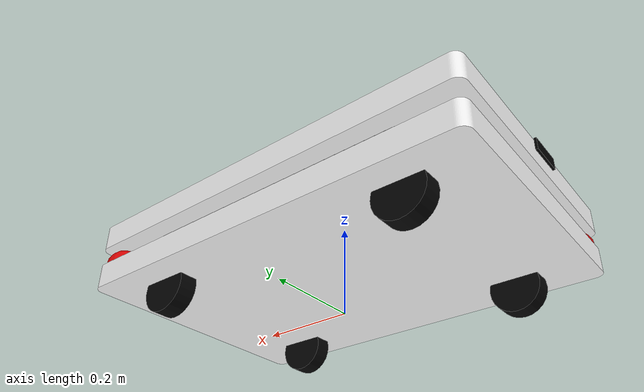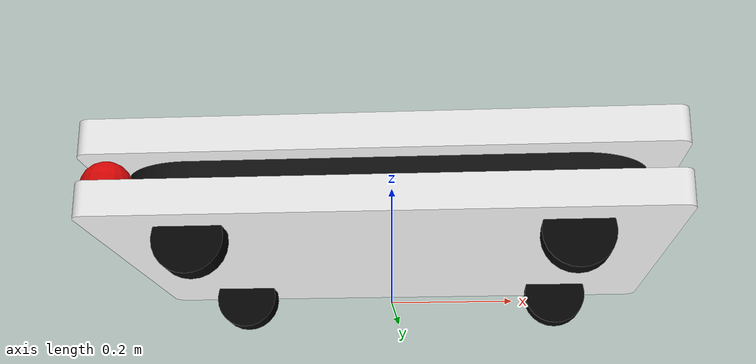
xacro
<?xml version="1.0"?>

<robot xmlns:xacro="http://www.ros.org/wiki/xacro"
       name="autonomous_tugger">

  <!-- VEHICLE PARAMETERS -->

  <xacro:property name="body_length" value="0.90"/>
  <xacro:property name="body_width" value="0.60"/>

  <xacro:property name="wheelbase" value="0.58"/>
  <xacro:property name="wheel_y" value="0.22"/>

  <xacro:property name="wheel_radius" value="0.055"/>
  <xacro:property name="wheel_width" value="0.040"/>
  <xacro:property name="wheel_mass" value="1.0"/>

  <xacro:property name="chassis_mass" value="45.0"/>

  <!-- MATERIALS -->

  <material name="body_white">
    <color rgba="0.95 0.95 0.95 1.0"/>
  </material>

  <material name="black">
    <color rgba="0.02 0.02 0.02 1.0"/>
  </material>

  <material name="gap_dark">
    <color rgba="0.06 0.06 0.06 1.0"/>
  </material>

  <material name="sensor_red">
    <color rgba="0.85 0.02 0.02 1.0"/>
  </material>

  <material name="camera_black">
    <color rgba="0.005 0.005 0.005 1.0"/>
  </material>

  <!-- BASE FOOTPRINT -->

  <link name="base_footprint"/>

  <joint name="base_footprint_joint"
         type="fixed">

    <parent link="base_footprint"/>
    <child link="base_link"/>

    <origin xyz="0 0 0.100"
            rpy="0 0 0"/>

  </joint>

  <!-- MAIN BODY -->

  <link name="base_link">

    <!-- LOWER WHITE FILLETED LAYER -->

    <visual name="bottom_layer">

      <origin xyz="0 0 0"
              rpy="0 0 0"/>

      <geometry>
        <mesh filename="package://tugger_description/meshes/filleted_body.stl"/>
      </geometry>

      <material name="body_white"/>

    </visual>

    <!-- SMALL RECESSED DARK GAP -->

    <visual name="middle_gap">

      <origin xyz="0 0 0.0475"
              rpy="0 0 0"/>

      <geometry>
        <mesh filename="package://tugger_description/meshes/filleted_middle.stl"/>
      </geometry>

      <material name="gap_dark"/>

    </visual>

    <!-- UPPER WHITE FILLETED LAYER -->

    <visual name="top_layer">

      <origin xyz="0 0 0.095"
              rpy="0 0 0"/>

      <geometry>
        <mesh filename="package://tugger_description/meshes/filleted_body.stl"/>
      </geometry>

      <material name="body_white"/>

    </visual>

    <!-- SIMPLE COLLISION -->

    <collision>

      <origin xyz="0 0 0.0475"
              rpy="0 0 0"/>

      <geometry>
        <box size="0.88 0.58 0.15"/>
      </geometry>

    </collision>

    <inertial>

      <origin xyz="0 0 0.0475"
              rpy="0 0 0"/>

      <mass value="${chassis_mass}"/>

      <inertia
        ixx="1.25"
        ixy="0"
        ixz="0"
        iyy="2.90"
        iyz="0"
        izz="3.70"/>

    </inertial>

  </link>

  <!-- STEERED WHEEL MACRO -->

  <xacro:macro name="steered_wheel"
               params="prefix x y">

    <link name="${prefix}_steering_link">

      <inertial>

        <mass value="0.3"/>

        <inertia
          ixx="0.0005"
          ixy="0"
          ixz="0"
          iyy="0.0005"
          iyz="0"
          izz="0.0005"/>

      </inertial>

    </link>

    <joint name="${prefix}_steering_joint"
           type="revolute">

      <parent link="base_link"/>
      <child link="${prefix}_steering_link"/>

      <origin xyz="${x} ${y} -0.045"
              rpy="0 0 0"/>

      <axis xyz="0 0 1"/>

      <limit
        lower="-0.7854"
        upper="0.7854"
        effort="500"
        velocity="1.5"/>

    </joint>

    <link name="${prefix}_wheel_link">

      <visual>

        <origin xyz="0 0 0"
                rpy="1.5708 0 0"/>

        <geometry>
          <cylinder
            radius="${wheel_radius}"
            length="${wheel_width}"/>
        </geometry>

        <material name="black"/>

      </visual>

      <collision>

        <origin xyz="0 0 0"
                rpy="1.5708 0 0"/>

        <geometry>
          <cylinder
            radius="${wheel_radius}"
            length="${wheel_width}"/>
        </geometry>

      </collision>

      <inertial>

        <mass value="${wheel_mass}"/>

        <inertia
          ixx="${(1.0/12.0) * wheel_mass *
                 (3*wheel_radius*wheel_radius +
                  wheel_width*wheel_width)}"
          ixy="0"
          ixz="0"
          iyy="${0.5 * wheel_mass *
                 wheel_radius*wheel_radius}"
          iyz="0"
          izz="${(1.0/12.0) * wheel_mass *
                 (3*wheel_radius*wheel_radius +
                  wheel_width*wheel_width)}"/>

      </inertial>

    </link>

    <joint name="${prefix}_wheel_joint"
           type="continuous">

      <parent link="${prefix}_steering_link"/>
      <child link="${prefix}_wheel_link"/>

      <origin xyz="0 0 0"
              rpy="0 0 0"/>

      <axis xyz="0 1 0"/>

    </joint>

  </xacro:macro>

  <!-- GAZEBO WHEEL CONTACT / FRICTION -->

  <xacro:macro name="wheel_gazebo_friction" params="prefix">

    <gazebo reference="${prefix}_wheel_link">

      <mu1>1.0</mu1>
      <mu2>0.20</mu2>

      <fdir1>1 0 0</fdir1>

    </gazebo>

  </xacro:macro>

  <xacro:wheel_gazebo_friction prefix="front_left"/>
  <xacro:wheel_gazebo_friction prefix="front_right"/>
  <xacro:wheel_gazebo_friction prefix="rear_left"/>
  <xacro:wheel_gazebo_friction prefix="rear_right"/>

  <!-- FOUR-WHEEL STEERING -->

  <xacro:steered_wheel
    prefix="front_left"
    x="${wheelbase/2}"
    y="${wheel_y}"/>

  <xacro:steered_wheel
    prefix="front_right"
    x="${wheelbase/2}"
    y="${-wheel_y}"/>

  <xacro:steered_wheel
    prefix="rear_left"
    x="${-wheelbase/2}"
    y="${wheel_y}"/>

  <xacro:steered_wheel
    prefix="rear_right"
    x="${-wheelbase/2}"
    y="${-wheel_y}"/>

  <!-- FRONT-LEFT HEMISPHERICAL LIDAR -->

  <link name="front_left_lidar_link">

    <visual>

      <geometry>
        <sphere radius="0.040"/>
      </geometry>

      <material name="sensor_red"/>

    </visual>

    <inertial>

      <mass value="0.15"/>

      <inertia
        ixx="0.0001"
        ixy="0"
        ixz="0"
        iyy="0.0001"
        iyz="0"
        izz="0.0001"/>

    </inertial>

  </link>

  <joint name="front_left_lidar_joint"
         type="fixed">

    <parent link="base_link"/>
    <child link="front_left_lidar_link"/>

    <origin xyz="0.410 0.260 0.0275"
            rpy="0 0 0"/>

  </joint>

  <!-- REAR-RIGHT HEMISPHERICAL LIDAR -->

  <link name="rear_right_lidar_link">

    <visual>

      <geometry>
        <sphere radius="0.040"/>
      </geometry>

      <material name="sensor_red"/>

    </visual>

    <inertial>

      <mass value="0.15"/>

      <inertia
        ixx="0.0001"
        ixy="0"
        ixz="0"
        iyy="0.0001"
        iyz="0"
        izz="0.0001"/>

    </inertial>

  </link>

  <joint name="rear_right_lidar_joint"
         type="fixed">

    <parent link="base_link"/>
    <child link="rear_right_lidar_link"/>

    <origin xyz="-0.410 -0.260 0.0275"
            rpy="0 0 0"/>

  </joint>

  <!-- GAZEBO LIDAR SENSORS -->

  <gazebo reference="front_left_lidar_link">
    <sensor name="front_left_lidar_sensor" type="gpu_lidar">
      <always_on>true</always_on>
      <update_rate>15</update_rate>
      <topic>front_left/scan</topic>
      <gz_frame_id>front_left_lidar_link</gz_frame_id>

      <lidar>
        <scan>
          <horizontal>
            <samples>720</samples>
            <resolution>1</resolution>
            <min_angle>-3.14159265</min_angle>
            <max_angle>3.14159265</max_angle>
          </horizontal>
        </scan>

        <range>
          <min>0.08</min>
          <max>20.0</max>
          <resolution>0.01</resolution>
        </range>
      </lidar>
    </sensor>
  </gazebo>

  <gazebo reference="rear_right_lidar_link">
    <sensor name="rear_right_lidar_sensor" type="gpu_lidar">
      <always_on>true</always_on>
      <update_rate>15</update_rate>
      <topic>rear_right/scan</topic>
      <gz_frame_id>rear_right_lidar_link</gz_frame_id>

      <lidar>
        <scan>
          <horizontal>
            <samples>720</samples>
            <resolution>1</resolution>
            <min_angle>-3.14159265</min_angle>
            <max_angle>3.14159265</max_angle>
          </horizontal>
        </scan>

        <range>
          <min>0.08</min>
          <max>20.0</max>
          <resolution>0.01</resolution>
        </range>
      </lidar>
    </sensor>
  </gazebo>

  <!-- FRONT CAMERA -->

  <link name="front_camera_link">

    <visual>

      <geometry>
        <box size="0.005 0.080 0.025"/>
      </geometry>

      <material name="camera_black"/>

    </visual>

    <inertial>

      <mass value="0.10"/>

      <inertia
        ixx="0.0001"
        ixy="0"
        ixz="0"
        iyy="0.0001"
        iyz="0"
        izz="0.0001"/>

    </inertial>

  </link>

  <joint name="front_camera_joint"
         type="fixed">

    <parent link="base_link"/>
    <child link="front_camera_link"/>

    <origin xyz="0.460 0 0.095"
            rpy="0 0 0"/>

  </joint>

  <!-- REAR CAMERA -->

  <link name="rear_camera_link">

    <visual>

      <geometry>
        <box size="0.005 0.080 0.025"/>
      </geometry>

      <material name="camera_black"/>

    </visual>

    <inertial>

      <mass value="0.10"/>

      <inertia
        ixx="0.0001"
        ixy="0"
        ixz="0"
        iyy="0.0001"
        iyz="0"
        izz="0.0001"/>

    </inertial>

  </link>

  <joint name="rear_camera_joint"
         type="fixed">

    <parent link="base_link"/>
    <child link="rear_camera_link"/>

    <origin xyz="-0.460 0 0.095"
            rpy="0 0 3.14159"/>

  </joint>

  <!-- GAZEBO FRONT CAMERA SENSOR -->

  <gazebo reference="front_camera_link">
    <sensor name="front_camera" type="camera">
      <always_on>true</always_on>
      <update_rate>5</update_rate>
      <topic>/front_camera/image_raw</topic>

      <camera>
        <horizontal_fov>1.5708</horizontal_fov>

        <image>
          <width>320</width>
          <height>240</height>
          <format>R8G8B8</format>
        </image>

        <clip>
          <near>0.05</near>
          <far>50.0</far>
        </clip>
      </camera>
    </sensor>
  </gazebo>

  <!-- GAZEBO REAR CAMERA SENSOR -->

  <gazebo reference="rear_camera_link">
    <sensor name="rear_camera" type="camera">
      <always_on>true</always_on>
      <update_rate>5</update_rate>
      <topic>/rear_camera/image_raw</topic>

      <camera>
        <horizontal_fov>1.5708</horizontal_fov>

        <image>
          <width>320</width>
          <height>240</height>
          <format>R8G8B8</format>
        </image>

        <clip>
          <near>0.05</near>
          <far>50.0</far>
        </clip>
      </camera>
    </sensor>
  </gazebo>

  <!-- IMU -->

  <link name="imu_link"/>

  <joint name="imu_joint"
         type="fixed">

    <parent link="base_link"/>
    <child link="imu_link"/>

    <origin xyz="0 0 0"
            rpy="0 0 0"/>

  </joint>

  <!-- GAZEBO IMU SENSOR -->

  <gazebo reference="imu_link">
    <sensor name="imu_sensor" type="imu">
      <always_on>true</always_on>
      <update_rate>100</update_rate>
      <topic>imu</topic>
    <gz_frame_id>imu_link</gz_frame_id>
      <imu>
        <angular_velocity>
          <x>
            <noise type="gaussian">
              <mean>0.0</mean>
              <stddev>0.0002</stddev>
            </noise>
          </x>
          <y>
            <noise type="gaussian">
              <mean>0.0</mean>
              <stddev>0.0002</stddev>
            </noise>
          </y>
          <z>
            <noise type="gaussian">
              <mean>0.0</mean>
              <stddev>0.0002</stddev>
            </noise>
          </z>
        </angular_velocity>

        <linear_acceleration>
          <x>
            <noise type="gaussian">
              <mean>0.0</mean>
              <stddev>0.01</stddev>
            </noise>
          </x>
          <y>
            <noise type="gaussian">
              <mean>0.0</mean>
              <stddev>0.01</stddev>
            </noise>
          </y>
          <z>
            <noise type="gaussian">
              <mean>0.0</mean>
              <stddev>0.01</stddev>
            </noise>
          </z>
        </linear_acceleration>
      </imu>
    </sensor>
  </gazebo>

  <!-- HITCH -->

  <link name="hitch_link"/>

  <joint name="hitch_joint"
         type="fixed">

    <parent link="base_link"/>
    <child link="hitch_link"/>

    <origin xyz="-0.48 0 -0.02"
            rpy="0 0 0"/>

  </joint>

  <!-- LIFTING PLATFORM -->

  <link name="lift_platform_link">

    <visual>
      <geometry>
        <box size="0.50 0.32 0.015"/>
      </geometry>

      <material name="gap_dark"/>
    </visual>

    <collision>
      <geometry>
        <box size="0.50 0.32 0.015"/>
      </geometry>
    </collision>

    <inertial>
      <mass value="3.0"/>

      <inertia
        ixx="0.02566"
        ixy="0"
        ixz="0"
        iyy="0.06256"
        iyz="0"
        izz="0.08810"/>
    </inertial>

  </link>

  <joint name="lift_joint"
         type="prismatic">

    <parent link="base_link"/>
    <child link="lift_platform_link"/>

    <!--
      Lowered position:
      upper body top = 0.1225 m
      platform thickness = 0.015 m
      platform center = 0.1300 m
    -->

    <origin xyz="0 0 0.130"
            rpy="0 0 0"/>

    <axis xyz="0 0 1"/>

    <limit
      lower="0.0"
      upper="0.065"
      effort="2000"
      velocity="0.05"/>

  </joint>

  <!-- ROS 2 CONTROL -->

  <ros2_control name="GazeboSimSystem" type="system">

    <hardware>
      <plugin>gz_ros2_control/GazeboSimSystem</plugin>
    </hardware>

    <joint name="front_left_steering_joint">
      <command_interface name="position"/>
      <state_interface name="position"/>
      <state_interface name="velocity"/>
    </joint>

    <joint name="front_right_steering_joint">
      <command_interface name="position"/>
      <state_interface name="position"/>
      <state_interface name="velocity"/>
    </joint>

    <joint name="rear_left_steering_joint">
      <command_interface name="position"/>
      <state_interface name="position"/>
      <state_interface name="velocity"/>
    </joint>

    <joint name="rear_right_steering_joint">
      <command_interface name="position"/>
      <state_interface name="position"/>
      <state_interface name="velocity"/>
    </joint>

    <!-- Passive front-wheel state interfaces -->

    <joint name="front_left_wheel_joint">
      <state_interface name="position"/>
      <state_interface name="velocity"/>
    </joint>

    <joint name="front_right_wheel_joint">
      <state_interface name="position"/>
      <state_interface name="velocity"/>
    </joint>

    <!-- Lift state interface -->

    <joint name="lift_joint">
      <command_interface name="position"/>
      <state_interface name="position"/>
      <state_interface name="velocity"/>
    </joint>

    <!-- Rear-wheel-drive traction interfaces -->

    <joint name="rear_left_wheel_joint">
      <command_interface name="velocity"/>
      <state_interface name="position"/>
      <state_interface name="velocity"/>
    </joint>

    <joint name="rear_right_wheel_joint">
      <command_interface name="velocity"/>
      <state_interface name="position"/>
      <state_interface name="velocity"/>
    </joint>

  </ros2_control>

  <!-- GAZEBO ROS 2 CONTROL -->

  <gazebo>

    <plugin
      filename="gz_ros2_control-system"
      name="gz_ros2_control::GazeboSimROS2ControlPlugin">

      <parameters>$(find tugger_gazebo)/config/controllers.yaml</parameters>

    </plugin>

  </gazebo>

</robot>
